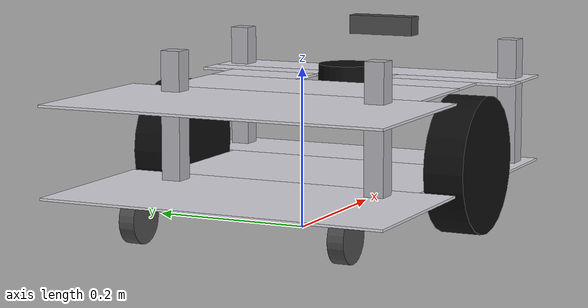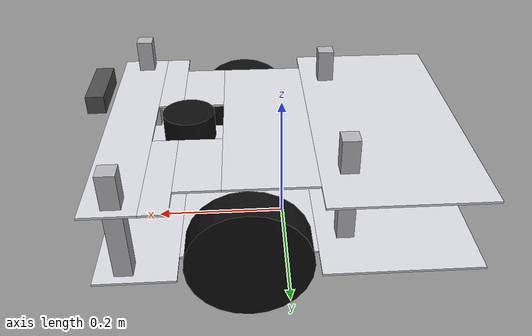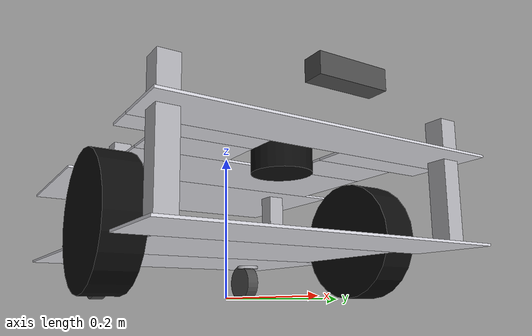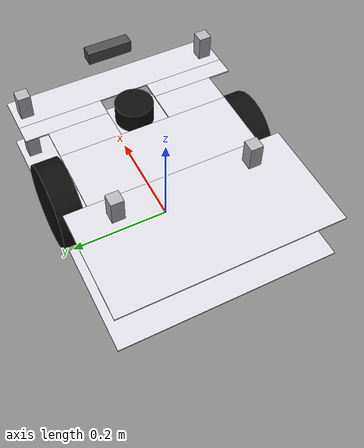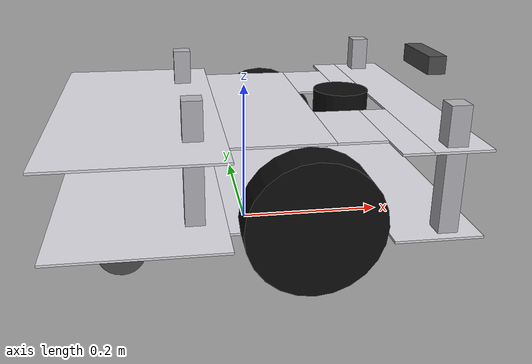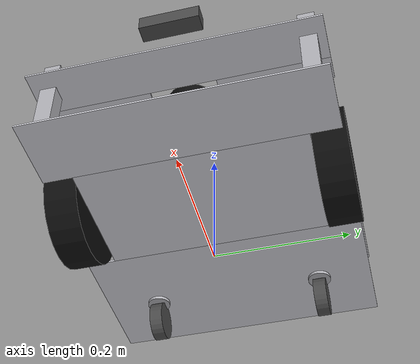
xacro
<?xml version="1.0"?>
<robot name="robot_chassis" xmlns:xacro="http://ros.org/wiki/xacro">

  <xacro:property name="body_length" value="0.520"/>
  <xacro:property name="body_width"  value="0.435"/>
  <xacro:property name="body_height" value="0.175"/>

  <xacro:property name="plate_thickness" value="0.003"/>
  <xacro:property name="lower_plate_z"   value="0.060"/>   <xacro:property name="plate_gap"       value="0.110"/>   <xacro:property name="upper_plate_z"   value="${lower_plate_z + plate_gap}"/>
  <xacro:property name="plate_mass"      value="2.0"/>

  <xacro:property name="standoff_size"    value="0.025"/>   <xacro:property name="standoff_inset_x" value="0.040"/>
  <xacro:property name="standoff_inset_y" value="0.025"/>
  <xacro:property name="standoff_extra_above" value="0.050"/>   <xacro:property name="standoff_length"  value="${plate_gap + standoff_extra_above}"/>

  <xacro:property name="wheel_radius"     value="0.085"/>   <xacro:property name="wheel_thickness"  value="0.050"/>   <xacro:property name="wheel_mass"       value="1.5"/>

  <xacro:property name="wheel_protrusion" value="0.005"/>   <xacro:property name="wheel_front_clearance" value="0.110"/>

  <xacro:property name="wheel_cutout_length" value="${2.0*wheel_radius + 0.020}"/>

  <xacro:property name="wheel_x_offset" value="${body_length/2.0 - wheel_front_clearance - wheel_cutout_length/2.0}"/>
  <xacro:property name="wheel_y_position" value="${body_width/2.0 + wheel_protrusion - wheel_thickness/2.0}"/>
  <xacro:property name="wheel_separation" value="${2.0 * wheel_y_position}"/>                       <xacro:property name="wheel_inner_gap" value="${wheel_separation - wheel_thickness}"/>           <xacro:property name="caster_wheel_radius"    value="0.030"/>   <xacro:property name="caster_wheel_thickness" value="0.020"/>
  <xacro:property name="caster_wheel_mass"      value="0.080"/>
  <xacro:property name="caster_mount_h"         value="0.005"/>   <xacro:property name="caster_yaw_h"           value="${lower_plate_z - caster_mount_h - caster_wheel_radius}"/>
  <xacro:property name="caster_trail"           value="0.012"/>   <xacro:property name="caster_x" value="${-body_length/2.0 + 0.100}"/>                          <xacro:property name="caster_y" value="0.135"/>                  <xacro:property name="standoff_x_front_early" value="${body_length/2.0 - standoff_inset_x}"/>
  <xacro:property name="lidar_x"                value="${(wheel_x_offset + standoff_x_front_early)/2.0}"/>
  <xacro:property name="lidar_hole_size" value="0.100"/>   <xacro:property name="camera_mass"   value="0.100"/>
  <xacro:property name="camera_size_x" value="0.025"/> <xacro:property name="camera_size_y" value="0.090"/> <xacro:property name="camera_size_z" value="0.025"/> <material name="aluminum"><color rgba="0.85 0.85 0.88 1.0"/></material>
  <material name="black">   <color rgba="0.05 0.05 0.05 1.0"/></material>
  <material name="dark_grey"><color rgba="0.30 0.30 0.30 1.0"/></material>
  <material name="silver">  <color rgba="0.70 0.70 0.72 1.0"/></material>

  <xacro:macro name="box_inertia" params="m x y z">
    <inertial>
      <mass value="${m}"/>
      <origin xyz="0 0 0" rpy="0 0 0"/>
      <inertia ixx="${m*(y*y + z*z)/12.0}"
               iyy="${m*(x*x + z*z)/12.0}"
               izz="${m*(x*x + y*y)/12.0}"
               ixy="0" ixz="0" iyz="0"/>
    </inertial>
  </xacro:macro>

  <xacro:macro name="cylinder_inertia" params="m r l">
    <inertial>
      <mass value="${m}"/>
      <origin xyz="0 0 0" rpy="0 0 0"/>
      <inertia ixx="${m*(3*r*r + l*l)/12.0}"
               iyy="${m*(3*r*r + l*l)/12.0}"
               izz="${m*r*r/2.0}"
               ixy="0" ixz="0" iyz="0"/>
    </inertial>
  </xacro:macro>

  <xacro:macro name="sphere_inertia" params="m r">
    <inertial>
      <mass value="${m}"/>
      <origin xyz="0 0 0" rpy="0 0 0"/>
      <inertia ixx="${2.0*m*r*r/5.0}"
               iyy="${2.0*m*r*r/5.0}"
               izz="${2.0*m*r*r/5.0}"
               ixy="0" ixz="0" iyz="0"/>
    </inertial>
  </xacro:macro>

  <link name="base_footprint"/>

  <xacro:macro name="notched_plate" params="link_name mass">
    <link name="${link_name}">
      <xacro:property name="x_cw_rear"  value="${wheel_x_offset - wheel_cutout_length/2.0}"/>
      <xacro:property name="x_cw_front" value="${wheel_x_offset + wheel_cutout_length/2.0}"/>

      <visual>
        <origin xyz="${(x_cw_front + body_length/2.0)/2.0} 0 ${plate_thickness/2.0}" rpy="0 0 0"/>
        <geometry><box size="${body_length/2.0 - x_cw_front} ${body_width} ${plate_thickness}"/></geometry>
        <material name="aluminum"/>
      </visual>
      <collision>
        <origin xyz="${(x_cw_front + body_length/2.0)/2.0} 0 ${plate_thickness/2.0}" rpy="0 0 0"/>
        <geometry><box size="${body_length/2.0 - x_cw_front} ${body_width} ${plate_thickness}"/></geometry>
      </collision>

      <visual>
        <origin xyz="${(-body_length/2.0 + x_cw_rear)/2.0} 0 ${plate_thickness/2.0}" rpy="0 0 0"/>
        <geometry><box size="${x_cw_rear + body_length/2.0} ${body_width} ${plate_thickness}"/></geometry>
        <material name="aluminum"/>
      </visual>
      <collision>
        <origin xyz="${(-body_length/2.0 + x_cw_rear)/2.0} 0 ${plate_thickness/2.0}" rpy="0 0 0"/>
        <geometry><box size="${x_cw_rear + body_length/2.0} ${body_width} ${plate_thickness}"/></geometry>
      </collision>

      <visual>
        <origin xyz="${wheel_x_offset} 0 ${plate_thickness/2.0}" rpy="0 0 0"/>
        <geometry><box size="${wheel_cutout_length} ${wheel_inner_gap} ${plate_thickness}"/></geometry>
        <material name="aluminum"/>
      </visual>
      <collision>
        <origin xyz="${wheel_x_offset} 0 ${plate_thickness/2.0}" rpy="0 0 0"/>
        <geometry><box size="${wheel_cutout_length} ${wheel_inner_gap} ${plate_thickness}"/></geometry>
      </collision>

      <xacro:box_inertia m="${mass}" x="${body_length}" y="${body_width}" z="${plate_thickness}"/>
    </link>
  </xacro:macro>

  <xacro:macro name="plate_box" params="cx cy sx sy">
    <visual>
      <origin xyz="${cx} ${cy} ${plate_thickness/2.0}" rpy="0 0 0"/>
      <geometry><box size="${sx} ${sy} ${plate_thickness}"/></geometry>
      <material name="aluminum"/>
    </visual>
    <collision>
      <origin xyz="${cx} ${cy} ${plate_thickness/2.0}" rpy="0 0 0"/>
      <geometry><box size="${sx} ${sy} ${plate_thickness}"/></geometry>
    </collision>
  </xacro:macro>

  <xacro:macro name="notched_plate_with_lidar_hole" params="link_name mass">
    <link name="${link_name}">
      <xacro:property name="x_cw_rear"  value="${wheel_x_offset - wheel_cutout_length/2.0}"/>
      <xacro:property name="x_cw_front" value="${wheel_x_offset + wheel_cutout_length/2.0}"/>
      <xacro:property name="x_h_left"   value="${lidar_x - lidar_hole_size/2.0}"/>
      <xacro:property name="x_h_right"  value="${lidar_x + lidar_hole_size/2.0}"/>
      <xacro:property name="y_h"        value="${lidar_hole_size/2.0}"/>
      <xacro:property name="y_ig"       value="${wheel_inner_gap/2.0}"/>
      <xacro:property name="y_w"        value="${body_width/2.0}"/>

      <xacro:plate_box cx="${(-body_length/2.0 + x_cw_rear)/2.0}" cy="0" sx="${x_cw_rear + body_length/2.0}" sy="${body_width}"/>
      <xacro:plate_box cx="${(x_cw_rear + x_h_left)/2.0}" cy="0" sx="${x_h_left - x_cw_rear}" sy="${wheel_inner_gap}"/>
      <xacro:plate_box cx="${(x_h_left + x_cw_front)/2.0}" cy="${(y_h + y_ig)/2.0}" sx="${x_cw_front - x_h_left}" sy="${y_ig - y_h}"/>
      <xacro:plate_box cx="${(x_h_left + x_cw_front)/2.0}" cy="${-(y_h + y_ig)/2.0}" sx="${x_cw_front - x_h_left}" sy="${y_ig - y_h}"/>
      <xacro:plate_box cx="${(x_cw_front + x_h_right)/2.0}" cy="${(y_h + y_w)/2.0}" sx="${x_h_right - x_cw_front}" sy="${y_w - y_h}"/>
      <xacro:plate_box cx="${(x_cw_front + x_h_right)/2.0}" cy="${-(y_h + y_w)/2.0}" sx="${x_h_right - x_cw_front}" sy="${y_w - y_h}"/>
      <xacro:plate_box cx="${(x_h_right + body_length/2.0)/2.0}" cy="0" sx="${body_length/2.0 - x_h_right}" sy="${body_width}"/>

      <xacro:box_inertia m="${mass}" x="${body_length}" y="${body_width}" z="${plate_thickness}"/>
    </link>
  </xacro:macro>

  <xacro:notched_plate link_name="base_link" mass="${plate_mass}"/>

  <joint name="base_footprint_to_base_link" type="fixed">
    <parent link="base_footprint"/>
    <child  link="base_link"/>
    <origin xyz="0 0 ${lower_plate_z}" rpy="0 0 0"/>
  </joint>

  <xacro:notched_plate_with_lidar_hole link_name="upper_plate_link" mass="${plate_mass}"/>

  <joint name="lower_plate_to_upper_plate" type="fixed">
    <parent link="base_link"/>
    <child  link="upper_plate_link"/>
    <origin xyz="0 0 ${plate_gap}" rpy="0 0 0"/>
  </joint>

  <xacro:macro name="standoff" params="name x y">
    <link name="${name}_link">
      <visual>
        <origin xyz="0 0 ${standoff_length/2.0}" rpy="0 0 0"/>
        <geometry><box size="${standoff_size} ${standoff_size} ${standoff_length}"/></geometry>
        <material name="silver"/>
      </visual>
      <collision>
        <origin xyz="0 0 ${standoff_length/2.0}" rpy="0 0 0"/>
        <geometry><box size="${standoff_size} ${standoff_size} ${standoff_length}"/></geometry>
      </collision>
      <xacro:box_inertia m="0.05" x="${standoff_size}" y="${standoff_size}" z="${standoff_length}"/>
    </link>
    <joint name="${name}_joint" type="fixed">
      <parent link="base_link"/>
      <child  link="${name}_link"/>
      <origin xyz="${x} ${y} ${plate_thickness}" rpy="0 0 0"/>
    </joint>
  </xacro:macro>

  <xacro:property name="standoff_x_front" value="${body_length/2.0 - standoff_inset_x}"/>
  <xacro:property name="standoff_y_front" value="${body_width/2.0  - standoff_inset_y}"/>
  <xacro:property name="standoff_x_rear"  value="${wheel_x_offset - wheel_cutout_length/2.0 - standoff_inset_x}"/>
  <xacro:property name="standoff_y_rear"  value="${wheel_inner_gap/2.0 - standoff_size/2.0 - standoff_inset_y}"/>

  <xacro:standoff name="standoff_fl" x=" ${standoff_x_front}" y=" ${standoff_y_front}"/>
  <xacro:standoff name="standoff_fr" x=" ${standoff_x_front}" y="-${standoff_y_front}"/>
  <xacro:standoff name="standoff_rl" x=" ${standoff_x_rear}"  y=" ${standoff_y_rear}"/>
  <xacro:standoff name="standoff_rr" x=" ${standoff_x_rear}"  y="-${standoff_y_rear}"/>

  <xacro:macro name="drive_wheel" params="prefix y_sign">
    <link name="${prefix}_wheel_link">
      <visual>
        <origin xyz="0 0 0" rpy="${pi/2.0} 0 0"/>
        <geometry><cylinder radius="${wheel_radius}" length="${wheel_thickness}"/></geometry>
        <material name="black"/>
      </visual>
      <collision>
        <origin xyz="0 0 0" rpy="${pi/2.0} 0 0"/>
        <geometry><cylinder radius="${wheel_radius}" length="${wheel_thickness}"/></geometry>
      </collision>
      <xacro:cylinder_inertia m="${wheel_mass}" r="${wheel_radius}" l="${wheel_thickness}"/>
    </link>

    <joint name="${prefix}_wheel_joint" type="continuous">
      <parent link="base_link"/>
      <child  link="${prefix}_wheel_link"/>
      <origin xyz="${wheel_x_offset} ${y_sign * wheel_separation/2.0} ${wheel_radius - lower_plate_z}" rpy="0 0 0"/>
      <axis xyz="0 1 0"/>
      <limit effort="10.0" velocity="10.0"/>
      <dynamics damping="0.1" friction="0.1"/>
    </joint>
  </xacro:macro>

  <xacro:drive_wheel prefix="left"  y_sign=" 1"/>
  <xacro:drive_wheel prefix="right" y_sign="-1"/>

  <xacro:macro name="caster_wheel" params="prefix x y">
    <link name="caster_mount_${prefix}_link">
      <visual>
        <origin xyz="0 0 ${-caster_mount_h/2.0}" rpy="0 0 0"/>
        <geometry><cylinder radius="0.018" length="${caster_mount_h}"/></geometry>
        <material name="silver"/>
      </visual>
      <collision>
        <origin xyz="0 0 ${-caster_mount_h/2.0}" rpy="0 0 0"/>
        <geometry><cylinder radius="0.018" length="${caster_mount_h}"/></geometry>
      </collision>
      <xacro:cylinder_inertia m="0.020" r="0.018" l="${caster_mount_h}"/>
    </link>
    <joint name="caster_mount_${prefix}_joint" type="fixed">
      <parent link="base_link"/>
      <child  link="caster_mount_${prefix}_link"/>
      <origin xyz="${x} ${y} 0" rpy="0 0 0"/>
    </joint>

    <link name="caster_yaw_${prefix}_link">
      <visual>
        <origin xyz="${-caster_trail/2.0} 0 ${-caster_yaw_h/2.0}" rpy="0 0 0"/>
        <geometry><box size="${caster_trail + 0.010} 0.012 ${caster_yaw_h}"/></geometry>
        <material name="silver"/>
      </visual>
      <collision>
        <origin xyz="${-caster_trail/2.0} 0 ${-caster_yaw_h/2.0}" rpy="0 0 0"/>
        <geometry><box size="${caster_trail + 0.010} 0.012 ${caster_yaw_h}"/></geometry>
      </collision>
      <xacro:box_inertia m="0.030" x="${caster_trail + 0.010}" y="0.012" z="${caster_yaw_h}"/>
    </link>
    <joint name="caster_yaw_${prefix}_joint" type="continuous">
      <parent link="caster_mount_${prefix}_link"/>
      <child  link="caster_yaw_${prefix}_link"/>
      <origin xyz="0 0 ${-caster_mount_h}" rpy="0 0 0"/>
      <axis xyz="0 0 1"/>
      <dynamics damping="0.02" friction="0.005"/>
    </joint>

    <link name="caster_wheel_${prefix}_link">
      <visual>
        <origin xyz="0 0 0" rpy="${pi/2.0} 0 0"/>
        <geometry><cylinder radius="${caster_wheel_radius}" length="${caster_wheel_thickness}"/></geometry>
        <material name="dark_grey"/>
      </visual>
      <collision>
        <origin xyz="0 0 0" rpy="${pi/2.0} 0 0"/>
        <geometry><cylinder radius="${caster_wheel_radius}" length="${caster_wheel_thickness}"/></geometry>
      </collision>
      <xacro:cylinder_inertia m="${caster_wheel_mass}" r="${caster_wheel_radius}" l="${caster_wheel_thickness}"/>
    </link>
    <joint name="caster_wheel_${prefix}_joint" type="continuous">
      <parent link="caster_yaw_${prefix}_link"/>
      <child  link="caster_wheel_${prefix}_link"/>
      <origin xyz="${-caster_trail} 0 ${-caster_yaw_h}" rpy="0 0 0"/>
      <axis xyz="0 1 0"/>
      <dynamics damping="0.05" friction="0.01"/>
    </joint>
  </xacro:macro>

  <xacro:caster_wheel prefix="rl" x="${caster_x}" y=" ${caster_y}"/>
  <xacro:caster_wheel prefix="rr" x="${caster_x}" y="-${caster_y}"/>

  <xacro:property name="lidar_radius" value="0.038"/>
  <xacro:property name="lidar_height" value="0.041"/>
  <xacro:property name="lidar_mass"   value="0.190"/>
  <xacro:property name="lidar_max_top_above_lower_chassis" value="0.130"/>

  <link name="lidar_link">
    <visual>
      <origin xyz="0 0 0" rpy="0 0 0"/>
      <geometry><cylinder radius="${lidar_radius}" length="${lidar_height}"/></geometry>
      <material name="black"/>
    </visual>
    <collision>
      <origin xyz="0 0 0" rpy="0 0 0"/>
      <geometry><cylinder radius="${lidar_radius}" length="${lidar_height}"/></geometry>
    </collision>
    <xacro:cylinder_inertia m="${lidar_mass}" r="${lidar_radius}" l="${lidar_height}"/>
  </link>

  <joint name="lidar_joint" type="fixed">
    <parent link="base_link"/>
    <child  link="lidar_link"/>
    <origin xyz="${lidar_x} 0 ${lidar_max_top_above_lower_chassis - lidar_height/2.0}" rpy="0 0 ${pi}"/>
  </joint>

  <link name="camera_link">
    <visual>
      <origin xyz="0 0 0" rpy="0 0 0"/>
      <geometry>
        <box size="${camera_size_x} ${camera_size_y} ${camera_size_z}"/>
      </geometry>
      <material name="dark_grey"/>
    </visual>
    <collision>
      <origin xyz="0 0 0" rpy="0 0 0"/>
      <geometry>
        <box size="${camera_size_x} ${camera_size_y} ${camera_size_z}"/>
      </geometry>
    </collision>
    <xacro:box_inertia m="${camera_mass}" x="${camera_size_x}" y="${camera_size_y}" z="${camera_size_z}"/>
  </link>

  <joint name="camera_joint" type="fixed">
    <parent link="base_link"/>
    <child  link="camera_link"/>
    <origin xyz="${lidar_x + 0.120} 0 0.170" rpy="0 0 0"/>
  </joint>

  <link name="depth_camera_optical_frame"/>
  <joint name="camera_optical_joint" type="fixed">
    <parent link="camera_link"/>
    <child link="depth_camera_optical_frame"/>
    <origin xyz="0 0 0" rpy="0.417281 -0.018276 1.611996"/>
  </joint>

  <gazebo reference="base_link"><material>Gazebo/Grey</material></gazebo>
  <gazebo reference="upper_plate_link"><material>Gazebo/Grey</material></gazebo>

  <gazebo reference="camera_link"><material>Gazebo/DarkGrey</material></gazebo>

  <gazebo reference="left_wheel_link">
    <material>Gazebo/Black</material>
    <mu1>1.0</mu1><mu2>1.0</mu2><kp>1e6</kp><kd>10</kd>
  </gazebo>
  <gazebo reference="right_wheel_link">
    <material>Gazebo/Black</material>
    <mu1>1.0</mu1><mu2>1.0</mu2><kp>1e6</kp><kd>10</kd>
  </gazebo>
  <gazebo reference="caster_wheel_rl_link">
    <material>Gazebo/DarkGrey</material>
    <mu1>0.05</mu1><mu2>0.05</mu2><kp>1e6</kp><kd>10</kd>
  </gazebo>
  <gazebo reference="caster_wheel_rr_link">
    <material>Gazebo/DarkGrey</material>
    <mu1>0.05</mu1><mu2>0.05</mu2><kp>1e6</kp><kd>10</kd>
  </gazebo>

  <gazebo reference="lidar_link">
    <material>Gazebo/Black</material>
    <sensor name="lidar_sensor" type="gpu_lidar">
      <topic>scan</topic>
      <gz_frame_id>lidar_link</gz_frame_id>
      <update_rate>10</update_rate>
      <always_on>true</always_on>
      <visualize>true</visualize>
      <ray>
        <scan>
          <horizontal>
            <samples>360</samples>
            <resolution>1</resolution>
            <min_angle>-3.14159265</min_angle>
            <max_angle> 3.14159265</max_angle>
          </horizontal>
          <vertical>
            <samples>1</samples>
            <resolution>1</resolution>
            <min_angle>0.0</min_angle>
            <max_angle>0.0</max_angle>
          </vertical>
        </scan>
        <range>
          <min>0.12</min>
          <max>12.0</max>
          <resolution>0.01</resolution>
        </range>
      </ray>
    </sensor>
  </gazebo>

  <gazebo reference="camera_link">
    <sensor name="depth_camera" type="rgbd_camera">
      <topic>camera</topic>
      <gz_frame_id>depth_camera_optical_frame</gz_frame_id>
      <update_rate>30</update_rate>
      <always_on>true</always_on>
      <visualize>true</visualize>
      <camera>
        <horizontal_fov>1.5008</horizontal_fov>
        <image>
          <width>640</width>
          <height>480</height>
          <format>R8G8B8</format>
        </image>
        <clip>
          <near>0.1</near>
          <far>10.0</far>
        </clip>
      </camera>
    </sensor>
  </gazebo>

  <gazebo>
    <plugin filename="gz-sim-diff-drive-system" name="gz::sim::systems::DiffDrive">
      <left_joint>left_wheel_joint</left_joint>
      <right_joint>right_wheel_joint</right_joint>
      <wheel_separation>${wheel_separation}</wheel_separation>
      <wheel_radius>${wheel_radius}</wheel_radius>
      <max_linear_acceleration>2.0</max_linear_acceleration>
      <max_linear_velocity>1.0</max_linear_velocity>
      <max_angular_velocity>2.0</max_angular_velocity>
      <topic>cmd_vel</topic>
      <odom_topic>odom</odom_topic>
      <tf_topic>tf</tf_topic>
      <frame_id>odom</frame_id>
      <child_frame_id>base_footprint</child_frame_id>
      <odom_publish_frequency>50</odom_publish_frequency>
    </plugin>

    <plugin filename="gz-sim-joint-state-publisher-system" name="gz::sim::systems::JointStatePublisher">
      <topic>joint_states</topic>
      <joint_name>left_wheel_joint</joint_name>
      <joint_name>right_wheel_joint</joint_name>
      <joint_name>caster_yaw_rl_joint</joint_name>
      <joint_name>caster_wheel_rl_joint</joint_name>
      <joint_name>caster_yaw_rr_joint</joint_name>
      <joint_name>caster_wheel_rr_joint</joint_name>
    </plugin>
  </gazebo>

</robot>
